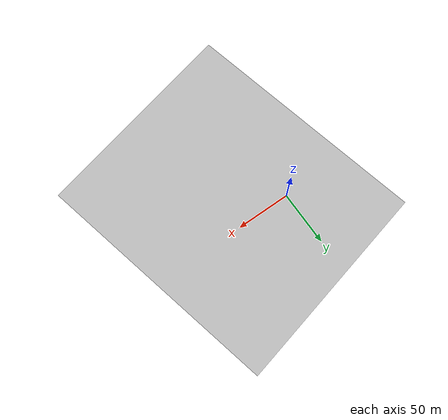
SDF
<?xml version='1.0'?>
<sdf version='1.8'>
  <world name='lboro_nfl'>

    <!-- Plugins -->
    <plugin
      filename="ignition-gazebo-physics-system"
      name="ignition::gazebo::systems::Physics">
    </plugin>
    <plugin
      filename="ignition-gazebo-sensors-system"
      name="ignition::gazebo::systems::Sensors">
      <render_engine>ogre2</render_engine>
    </plugin>
    <plugin
      filename="ignition-gazebo-scene-broadcaster-system"
      name="ignition::gazebo::systems::SceneBroadcaster">
    </plugin>
    <plugin
      filename="ignition-gazebo-user-commands-system"
      name="ignition::gazebo::systems::UserCommands">
    </plugin>
    <plugin
      filename="BasicSystem"
      name="antobot_sim_gazebo::BasicSystem">
    </plugin>
    <plugin
      filename="FullSystem"
      name="antobot_sim_gazebo::FullSystem">
    </plugin>

    <!-- Not yet working plugins -->
   <plugin
      filename="ignition-gazebo-imu-system"
      name="ignition::gazebo::systems::Imu">
    </plugin>
   <plugin
      filename="ignition-gazebo-navsat-system"
      name="ignition::gazebo::systems::NavSat">
    </plugin>

    <physics type='ode'>
      <max_step_size>0.003</max_step_size>
      <real_time_factor>1.0</real_time_factor>
      <real_time_update_rate>1000</real_time_update_rate>
      <gravity>0 0 -9.81</gravity>
    </physics>

    <light name='sun' type='directional'>
      <cast_shadows>false</cast_shadows>
      <pose>0 0 10 0 -0 0</pose>
      <diffuse>1.0 1.0 1.0 1</diffuse>
      <specular>0.2 0.2 0.2 1</specular>
      <attenuation>
        <range>1000</range>
        <constant>0.9</constant>
        <linear>0.01</linear>
        <quadratic>0.001</quadratic>
      </attenuation>
      <direction>-0.5 0.5 -1.0</direction>
    </light>

    <scene>
      <ambient>1 1 1 1</ambient>
      <background>0.3 0.7 0.9 1</background>
      <shadows>0</shadows>
      <grid>false</grid>
      <sky>
        <clouds>
          <speed>12</speed>
        </clouds>
      </sky>
      <shadows>1</shadows>
    </scene>

    <spherical_coordinates>
      <surface_model>EARTH_WGS84</surface_model>
      <latitude_deg>31.50738527195001</latitude_deg>
      <longitude_deg>120.50319378264248</longitude_deg>
      <elevation>67</elevation>
      <heading_deg>269.1</heading_deg>
    </spherical_coordinates>

    <model name='terrain'>
      <pose>0 0 0 0 0 3.14159</pose>
      <static>true</static>
      <link name='terrain'>
        <collision name='terrain_collision'>
          <geometry>
            <mesh>
              <uri>
                model://lboro_nfl/terrain.dae
              </uri>
            </mesh>
          </geometry>
        </collision>
        <visual name='terrain_visual'>
          <geometry>
            <mesh>
              <uri>
                model://lboro_nfl/terrain.dae
              </uri>
            </mesh>
          </geometry>
        </visual>
      </link>
    </model>

  </world>
</sdf>
